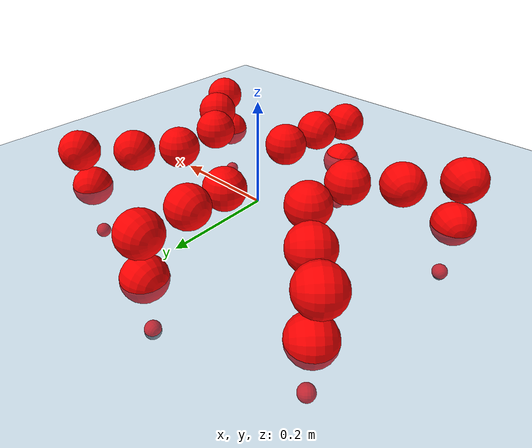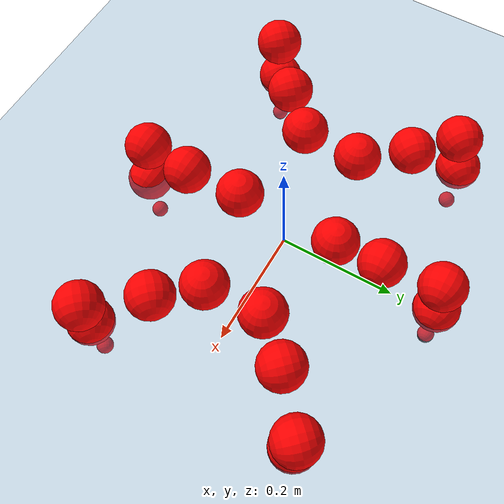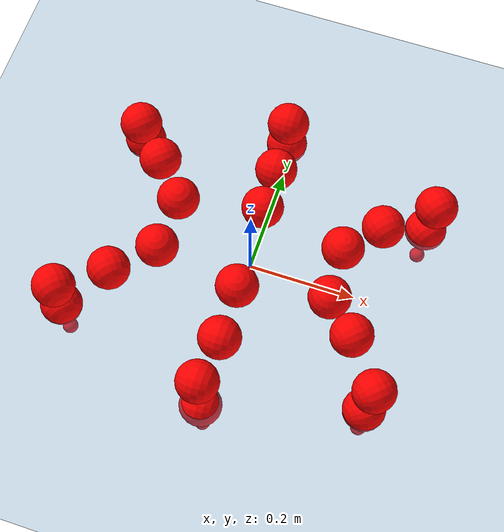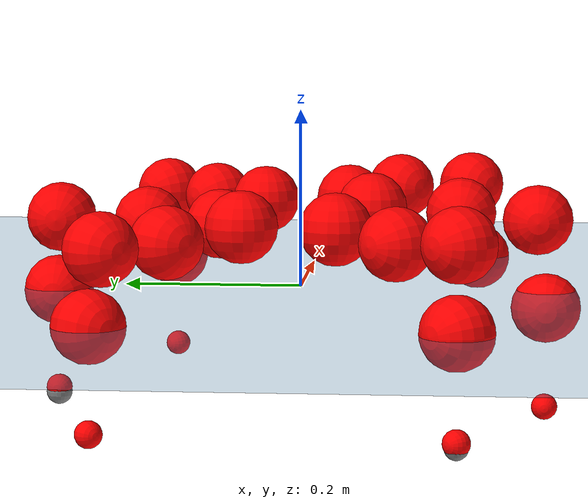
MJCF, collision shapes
<mujoco model="Golem">
  <compiler angle="radian" assetdir="assets" balanceinertia="true" inertiafromgeom="false"/>

  <option timestep="0.005" density="1.2" viscosity="2e-05"/>

  <size nkey="1"/>

  <visual>
    <quality shadowsize="8192"/>
    <map shadowclip="0.5"/>
  </visual>

  <default>
    <default class="/">
      <joint armature="0.01" damping="0.01" frictionloss="0.01"/>
      <geom contype="0" conaffinity="0" group="1" solref="-1000 -80"/>
      <site size="0.01 0.005 0.005" group="5"/>
      <general forcelimited="true" biastype="affine" gainprm="25" biasprm="0 -25 -0.5"/>
      <default class="visual">
        <geom type="mesh" group="2"/>
      </default>
      <default class="collision">
        <geom group="3"/>
      </default>
      <default class="foot">
        <geom size="0.01 0 0" condim="6" group="4" priority="1" solimp="0.015 1 0.01"/>
      </default>
      <default class="reward_collision_sphere">
        <geom group="5" rgba="1 0 0 1"/>
      </default>
    </default>
  </default>

  <asset>
    <texture type="skybox" colorspace="auto" name="//unnamed_texture_0" builtin="gradient" rgb1="0.95 0.95 0.95" rgb2="0.95 0.95 0.95" width="100" height="600"/>
    <texture type="2d" colorspace="auto" name="texplane" builtin="checker" rgb1="0.345 0.575 0.748" rgb2="0.345 0.575 0.748" markrgb="1 1 1" width="512" height="512"/>
    <material name="MatPlane" class="/" texture="texplane" texuniform="true" texrepeat="2 2" specular="0.9"/>
    <mesh name="body" class="/" file="body.stl" scale="0.001 0.001 0.001"/>
    <mesh name="coxa" class="/" file="coxa.stl" scale="0.001 0.001 0.001"/>
    <mesh name="femur" class="/" file="femur.stl" scale="0.001 0.001 0.001"/>
    <mesh name="tibia" class="/" file="tibia.stl" scale="0.001 0.001 0.001"/>
    <mesh name="tarsus" class="/" file="tarsus.stl" scale="0.001 0.001 0.001"/>
  </asset>

  <worldbody>
    <geom name="floor" class="/" size="100 100 0.125" type="plane" group="0" material="MatPlane"/>
    <light name="toplight_shadow" class="/" pos="0 0 5" dir="0.0990148 0.0990148 -0.990148" type="directional" ambient="0.04 0.04 0.04" diffuse="0.55 0.55 0.55" specular="0.12 0.12 0.12"/>
    <light name="toplight_fill" class="/" pos="0 0 5" dir="0.0990148 0.0990148 -0.990148" type="directional" castshadow="false" ambient="0.04 0.04 0.04" diffuse="0.3 0.3 0.3" specular="0.08 0.08 0.08"/>
    <body name="trunk" pos="0.00505037 0.000455825 0.0121843" quat="1 0.00068181 0.000135944 -0.000135358">
      <inertial pos="-0.00537933 -0.00173181 -0.0110138" quat="0.999174 -0.00863896 0.0387985 0.0084742" mass="3.16435" diaginertia="0.0150203 0.00452365 0.0109934"/>
      <joint name="//unnamed_joint_0" type="free"/>
      <geom name="//unnamed_geom_1" class="/" pos="0 0 0.065834" quat="1 0 0 0" type="mesh" rgba="0.9 0.9 0.9 1" mesh="body"/>
      <site name="imu" class="/" pos="0.138485 -0.000232385 0.0899509" size="0.00983564"/>
      <camera name="track" class="/" pos="0 -1.74126 0" quat="0.707107 0.707107 0 0" mode="trackcom"/>
      <camera name="ego_camera" class="/" pos="0.136683 0 0.102866" quat="-0.5 -0.5 0.5 0.5"/>
      <body name="coxa_RR" pos="-0.188454 -0.0725179 0.0741312" quat="0.382707 9.21873e-05 -0.000257037 -0.92387">
        <inertial pos="-0.00137821 0.0119603 -0.000328651" quat="0.999969 -0.000251182 0.00681741 -0.00388564" mass="0.226184" diaginertia="0.0164789 0.00508945 0.0129298"/>
        <joint name="coxa_joint_RR" class="/" pos="0 0 0" axis="0.0682949 -0.00640008 -0.997645" range="-3.11798 3.28953" armature="0.0128163" damping="0.0308665" frictionloss="0.00965447"/>
        <geom name="//unnamed_geom_2" class="/" type="mesh" rgba="0.2 0.2 0.2 1" mesh="coxa"/>
        <geom name="//unnamed_geom_3" class="reward_collision_sphere" size="0.0393425" pos="-0.0315422 0 0"/>
        <body name="femur_RR" pos="0.0640026 -0.000741085 -0.00580517" quat="0.500389 -0.499283 0.500168 0.50016">
          <inertial pos="0.00188973 -0.00601885 0.00599775" quat="0.999974 0.00389985 0.00392662 0.00469658" mass="0.186493" diaginertia="0.012965 0.00507713 0.0113818"/>
          <joint name="femur_joint_RR" class="/" pos="0 0 0" axis="-0.00620083 0.00375037 -0.999974" stiffness="0.022559" range="-3.18455 3.35917" armature="0.01352" damping="0.00838046" frictionloss="0.00591841"/>
          <geom name="//unnamed_geom_4" class="/" type="mesh" rgba="0.9 0.9 0.9 1" mesh="femur"/>
          <geom name="//unnamed_geom_5" class="reward_collision_sphere" size="0.0393425"/>
          <body name="tibia_RR" pos="-0.0106748 -0.101827 -0.00772047" quat="-0.000800643 0.999996 0.00102951 0.0023849">
            <inertial pos="0.00993915 0.00670679 0.000423595" quat="0.999091 -0.000172724 0.0425652 0.00225229" mass="0.189666" diaginertia="0.0144875 0.00506243 0.0117696"/>
            <joint name="tibia_joint_RR" class="/" pos="0 0 0" axis="0.0278963 -0.00736045 0.999584" range="-2.90545 3.22363" armature="0.0135173" damping="0.0339825" frictionloss="0.00983698"/>
            <geom name="//unnamed_geom_6" class="/" type="mesh" rgba="0.2 0.2 0.2 1" mesh="tibia"/>
            <geom name="//unnamed_geom_7" class="reward_collision_sphere" size="0.0393425"/>
            <body name="tarsus_RR" pos="0.0895661 -0.000998156 0.00129627" quat="0.999999 -0.00107395 0.000280352 -0.000281035">
              <inertial pos="0.0633601 -0.0107492 0.00799383" quat="0.495257 0.486615 0.512171 0.505576" mass="0.191067" diaginertia="0.0124685 0.00458415 0.0115082"/>
              <joint name="tarsus_joint_RR" class="/" pos="0 0 0" axis="0.000108835 0.0017208 0.999999" stiffness="0.0584457" range="-3.14882 3.1489" armature="0.00532409" damping="0.00757884" frictionloss="0.00544516"/>
              <geom name="//unnamed_geom_8" class="/" type="mesh" rgba="0.9 0.9 0.9 1" mesh="tarsus"/>
              <geom name="foot_1" class="foot" size="0.0127027" pos="0.117757 0 0" quat="0 -0.707107 0 0.707107"/>
              <geom name="//unnamed_geom_10" class="reward_collision_sphere" size="0.0393425"/>
              <geom name="//unnamed_geom_11" class="reward_collision_sphere" size="0.0147535" pos="0.113026 0 0"/>
              <site name="foot_1" class="foot" pos="0.117757 0 0" quat="0 -0.707107 0 0.707107" size="0.00983564"/>
            </body>
          </body>
        </body>
      </body>
      <body name="coxa_RM" pos="-0.0036595 -0.112213 0.0779564" quat="0.705363 0.00522825 0.0026237 -0.708822">
        <inertial pos="0.0102221 -0.000182701 0.0046678" quat="0.999995 0.00141679 -0.00259311 0.000667063" mass="0.216882" diaginertia="0.0152979 0.00575734 0.0124334"/>
        <joint name="coxa_joint_RM" class="/" pos="0 0 0" axis="-0.00369667 0.00894535 -0.999953" stiffness="0.0246465" range="-2.88283 3.1115" armature="0.011152" damping="0" frictionloss="0.0101003"/>
        <geom name="//unnamed_geom_12" class="/" type="mesh" rgba="0.2 0.2 0.2 1" mesh="coxa"/>
        <geom name="//unnamed_geom_13" class="reward_collision_sphere" size="0.0393425" pos="-0.0315422 0 0"/>
        <body name="femur_RM" pos="0.0687245 0.00249397 -0.00378061" quat="0.49952 -0.502951 0.501566 0.495935">
          <inertial pos="-0.00503156 0.00437199 -0.00413527" quat="0.998667 -0.0502853 0.00999573 -0.00600885" mass="0.170323" diaginertia="0.0113447 0.00491876 0.0101624"/>
          <joint name="femur_joint_RM" class="/" pos="0 0 0" axis="-0.000136426 -0.00564652 -0.999984" stiffness="0.0607274" range="-3.16524 3.10969" armature="0.00941022" damping="0.0249877" frictionloss="0.0119035"/>
          <geom name="//unnamed_geom_14" class="/" type="mesh" rgba="0.9 0.9 0.9 1" mesh="femur"/>
          <geom name="//unnamed_geom_15" class="reward_collision_sphere" size="0.0393425"/>
          <body name="tibia_RM" pos="0.00573646 -0.0861984 -0.0102892" quat="0.000349928 1 0.000177801 0.00016541">
            <inertial pos="0.00324305 -0.0135702 0.000640004" quat="0.999957 0.00134652 6.24044e-05 -0.00913257" mass="0.160679" diaginertia="0.0110724 0.00426259 0.00903691"/>
            <joint name="tibia_joint_RM" class="/" pos="0 0 0" axis="-0.0207215 -0.0248624 0.999476" stiffness="0.000125847" range="-3.29573 3.41425" armature="0.00670456" damping="0.0640927" frictionloss="0.0101535"/>
            <geom name="//unnamed_geom_16" class="/" type="mesh" rgba="0.2 0.2 0.2 1" mesh="tibia"/>
            <geom name="//unnamed_geom_17" class="reward_collision_sphere" size="0.0393425"/>
            <body name="tarsus_RM" pos="0.100222 0.0108385 -0.00604758" quat="0.999992 0.00281528 -0.00146441 0.00259831">
              <inertial pos="0.0588456 -0.0124359 -0.00378531" quat="0.494083 0.503291 0.502295 0.50028" mass="0.243273" diaginertia="0.0138914 0.00539167 0.0135342"/>
              <joint name="tarsus_joint_RM" class="/" pos="0 0 0" axis="-0.0292785 -0.0119568 0.9995" stiffness="0.000186454" range="-3.16669 3.16826" armature="0.00662324" damping="0" frictionloss="0.00998568"/>
              <geom name="//unnamed_geom_18" class="/" type="mesh" rgba="0.9 0.9 0.9 1" mesh="tarsus"/>
              <geom name="foot_2" class="foot" size="0.00835368" pos="0.117757 0 0" quat="0 -0.707107 0 0.707107"/>
              <geom name="//unnamed_geom_20" class="reward_collision_sphere" size="0.0393425"/>
              <geom name="//unnamed_geom_21" class="reward_collision_sphere" size="0.0147535" pos="0.113026 0 0"/>
              <site name="foot_2" class="foot" pos="0.117757 0 0" quat="0 -0.707107 0 0.707107" size="0.00983564"/>
            </body>
          </body>
        </body>
      </body>
      <body name="coxa_RF" pos="0.180244 -0.0686638 0.0704096" quat="0.922828 0.00132555 -0.0018274 -0.385205">
        <inertial pos="0.0108167 -0.00207887 -0.00941202" quat="0.999501 -0.00932159 -0.0269492 0.0135795" mass="0.151544" diaginertia="0.0116063 0.00486117 0.010439"/>
        <joint name="coxa_joint_RF" class="/" pos="0 0 0" axis="-0.0305824 -0.00838276 -0.999497" stiffness="0.0138943" range="-3.00814 3.1374" armature="0.0147372" damping="0" frictionloss="0.00641016"/>
        <geom name="//unnamed_geom_22" class="/" type="mesh" rgba="0.2 0.2 0.2 1" mesh="coxa"/>
        <geom name="//unnamed_geom_23" class="reward_collision_sphere" size="0.0393425" pos="-0.0315422 0 0"/>
        <body name="femur_RF" pos="0.0508722 -0.000581157 0.00734519" quat="0.498217 -0.499616 0.504352 0.497788">
          <inertial pos="0.000955688 0.00500601 -0.000550095" quat="0.999998 -0.0021481 0.000500423 0.000121955" mass="0.249044" diaginertia="0.0127819 0.00605695 0.0144968"/>
          <joint name="femur_joint_RF" class="/" pos="0 0 0" axis="0.000628615 0.00182175 -0.999998" stiffness="0.0632023" range="-3.22437 3.37063" armature="0.015868" damping="0.00182645" frictionloss="0.0161546"/>
          <geom name="//unnamed_geom_24" class="/" type="mesh" rgba="0.9 0.9 0.9 1" mesh="femur"/>
          <geom name="//unnamed_geom_25" class="reward_collision_sphere" size="0.0393425"/>
          <body name="tibia_RF" pos="0.00339321 -0.106056 -0.0123398" quat="-0.000275914 1 0.000192098 -0.000249503">
            <inertial pos="0.0110112 0.0021341 -0.000607274" quat="0.999995 -0.000551084 0.0029662 0.00133139" mass="0.207487" diaginertia="0.0155699 0.00544203 0.0125028"/>
            <joint name="tibia_joint_RF" class="/" pos="0 0 0" axis="0.0247207 -0.0160785 0.999565" stiffness="0.0251827" range="-3.28018 3.14438" armature="0.00976964" damping="0.0591211" frictionloss="0.00663709"/>
            <geom name="//unnamed_geom_26" class="/" type="mesh" rgba="0.2 0.2 0.2 1" mesh="tibia"/>
            <geom name="//unnamed_geom_27" class="reward_collision_sphere" size="0.0393425"/>
            <body name="tarsus_RF" pos="0.0893253 0.000846842 0.0108789" quat="0.999992 -0.0027977 -0.000709849 0.00282858">
              <inertial pos="0.0733767 0.0064653 -0.0011181" quat="0.552739 0.48915 0.459849 0.493712" mass="0.198983" diaginertia="0.0137243 0.00482028 0.0142112"/>
              <joint name="tarsus_joint_RF" class="/" pos="0 0 0" axis="0.0301487 -0.00564102 0.99953" range="-3.09329 3.16335" armature="0.0153837" damping="0.0182473" frictionloss="0.0147799"/>
              <geom name="//unnamed_geom_28" class="/" type="mesh" rgba="0.9 0.9 0.9 1" mesh="tarsus"/>
              <geom name="foot_3" class="foot" size="0.0098346" pos="0.117757 0 0" quat="0 -0.707107 0 0.707107"/>
              <geom name="//unnamed_geom_30" class="reward_collision_sphere" size="0.0393425"/>
              <geom name="//unnamed_geom_31" class="reward_collision_sphere" size="0.0147535" pos="0.113026 0 0"/>
              <site name="foot_3" class="foot" pos="0.117757 0 0" quat="0 -0.707107 0 0.707107" size="0.00983564"/>
            </body>
          </body>
        </body>
      </body>
      <body name="coxa_LR" pos="-0.184246 0.0731603 0.0750146" quat="0.381893 0.000176097 -0.000709147 0.924206">
        <inertial pos="-0.00411931 0.000196928 -0.000681457" quat="0.998227 -0.0378411 0.0379218 -0.0259326" mass="0.180251" diaginertia="0.0127433 0.00405055 0.0112787"/>
        <joint name="coxa_joint_LR" class="/" pos="0 0 0" axis="0.0221924 -0.0100488 -0.999703" range="-3.16522 3.03538" armature="0.00491501" damping="0.00729725" frictionloss="0.00795635"/>
        <geom name="//unnamed_geom_32" class="/" type="mesh" rgba="0.2 0.2 0.2 1" mesh="coxa"/>
        <geom name="//unnamed_geom_33" class="reward_collision_sphere" size="0.0393425" pos="-0.0315422 0 0"/>
        <body name="femur_LR" pos="0.0635156 -0.00720336 -0.00946699" quat="0.50143 -0.50003 0.501845 0.496678">
          <inertial pos="0.0099296 0.0116214 -0.0116028" quat="0.999998 0.000606788 -0.000625619 0.00163546" mass="0.151231" diaginertia="0.0110537 0.00401969 0.011141"/>
          <joint name="femur_joint_LR" class="/" pos="0 0 0" axis="0.0268946 0.0547257 0.998139" stiffness="0.0283888" range="-2.98093 3.31239" armature="0.00309844" damping="0.0130725" frictionloss="0.0146782"/>
          <geom name="//unnamed_geom_34" class="/" type="mesh" rgba="0.9 0.9 0.9 1" mesh="femur"/>
          <geom name="//unnamed_geom_35" class="reward_collision_sphere" size="0.0393425"/>
          <body name="tibia_LR" pos="-0.000373095 -0.0853524 0.00111918" quat="-7.36083e-05 1 -0.00033303 -3.96101e-05">
            <inertial pos="0.000145564 0.0115445 0.00111958" quat="0.999588 0.0034676 -0.0198006 0.0204768" mass="0.232421" diaginertia="0.0153404 0.00508628 0.0146156"/>
            <joint name="tibia_joint_LR" class="/" pos="0 0 0" axis="0.00804793 0.0539335 -0.998512" stiffness="0.0539095" range="-3.11128 3.35443" armature="0.00994507" damping="0.00372787" frictionloss="0.0059654"/>
            <geom name="//unnamed_geom_36" class="/" type="mesh" rgba="0.2 0.2 0.2 1" mesh="tibia"/>
            <geom name="//unnamed_geom_37" class="reward_collision_sphere" size="0.0393425"/>
            <body name="tarsus_LR" pos="0.0798662 0.0103694 0.00704013" quat="0.999993 -0.00341602 -0.000439302 0.00158957">
              <inertial pos="0.06766 -0.00491931 0.00892142" quat="0.502285 0.499926 0.500713 0.497062" mass="0.211112" diaginertia="0.0132633 0.0046668 0.011401"/>
              <joint name="tarsus_joint_LR" class="/" pos="0 0 0" axis="0.000195414 0.0064422 -0.999979" stiffness="0.0211068" range="-2.96341 3.14577" armature="0.0146197" damping="0.017055" frictionloss="0.00941263"/>
              <geom name="//unnamed_geom_38" class="/" type="mesh" rgba="0.9 0.9 0.9 1" mesh="tarsus"/>
              <geom name="foot_4" class="foot" size="0.00983273" pos="0.117757 0 0" quat="0.707107 0 -0.707107 0"/>
              <geom name="//unnamed_geom_40" class="reward_collision_sphere" size="0.0393425"/>
              <geom name="//unnamed_geom_41" class="reward_collision_sphere" size="0.0147535" pos="0.113026 0 0"/>
              <site name="foot_4" class="foot" pos="0.117757 0 0" quat="0.707107 0 -0.707107 0" size="0.00983564"/>
            </body>
          </body>
        </body>
      </body>
      <body name="coxa_LM" pos="-0.0117782 0.121811 0.0589816" quat="0.706959 -0.000117691 0.000453588 0.707255">
        <inertial pos="-0.00712547 -0.00371897 -0.00428893" quat="0.999572 0.0274216 0.00209229 -0.00997214" mass="0.212692" diaginertia="0.0112569 0.00528833 0.0110631"/>
        <joint name="coxa_joint_LM" class="/" pos="0 0 0" axis="-0.0505012 0.0214932 -0.998493" stiffness="0.0208171" range="-3.24014 2.88385" armature="0.00987429" damping="0.0165356" frictionloss="0.00914525"/>
        <geom name="//unnamed_geom_42" class="/" type="mesh" rgba="0.2 0.2 0.2 1" mesh="coxa"/>
        <geom name="//unnamed_geom_43" class="reward_collision_sphere" size="0.0393425" pos="-0.0315422 0 0"/>
        <body name="femur_LM" pos="0.0499244 0.00025351 0.0025797" quat="0.502452 -0.50263 0.497598 0.497294">
          <inertial pos="-0.00839161 0.00107158 0.00778424" quat="0.99998 -0.00205716 -0.00286483 0.00528541" mass="0.143878" diaginertia="0.0116512 0.00445751 0.00903827"/>
          <joint name="femur_joint_LM" class="/" pos="0 0 0" axis="0.011925 0.0428003 0.999012" range="-2.91336 3.36324" armature="0.0082442" damping="0" frictionloss="0.00597134"/>
          <geom name="//unnamed_geom_44" class="/" type="mesh" rgba="0.9 0.9 0.9 1" mesh="femur"/>
          <geom name="//unnamed_geom_45" class="reward_collision_sphere" size="0.0393425"/>
          <body name="tibia_LM" pos="-0.00356714 -0.0985908 0.00762316" quat="-0.0010998 0.999999 0.0001546 0.0011552">
            <inertial pos="-0.00778606 -0.00613887 0.0012138" quat="0.999795 -0.00175649 -0.000340678 -0.0201811" mass="0.1645" diaginertia="0.011579 0.00531729 0.00967555"/>
            <joint name="tibia_joint_LM" class="/" pos="0 0 0" axis="0.0201904 0.0332381 -0.999244" stiffness="0.0687182" range="-3.15571 3.12705" armature="0.0152021" damping="0.0358328" frictionloss="0.00929313"/>
            <geom name="//unnamed_geom_46" class="/" type="mesh" rgba="0.2 0.2 0.2 1" mesh="tibia"/>
            <geom name="//unnamed_geom_47" class="reward_collision_sphere" size="0.0393425"/>
            <body name="tarsus_LM" pos="0.0829554 0.00316035 -0.00158705" quat="1 0.000341876 -0.000134455 -5.97504e-05">
              <inertial pos="0.061127 8.89026e-05 -0.00938178" quat="0.504125 0.514676 0.476894 0.503526" mass="0.201906" diaginertia="0.0148223 0.00440459 0.0112752"/>
              <joint name="tarsus_joint_LM" class="/" pos="0 0 0" axis="0.00376978 -0.00194825 -0.999991" stiffness="0.0399308" range="-3.06986 3.162" armature="0.0102914" damping="0" frictionloss="0.00978137"/>
              <geom name="//unnamed_geom_48" class="/" type="mesh" rgba="0.9 0.9 0.9 1" mesh="tarsus"/>
              <geom name="foot_5" class="foot" size="0.0147572" pos="0.117757 0 0" quat="0.707107 0 -0.707107 0"/>
              <geom name="//unnamed_geom_50" class="reward_collision_sphere" size="0.0393425"/>
              <geom name="//unnamed_geom_51" class="reward_collision_sphere" size="0.0147535" pos="0.113026 0 0"/>
              <site name="foot_5" class="foot" pos="0.117757 0 0" quat="0.707107 0 -0.707107 0" size="0.00983564"/>
            </body>
          </body>
        </body>
      </body>
      <body name="coxa_LF" pos="0.175043 0.0764854 0.0680217" quat="0.922038 -0.00075042 0.0030874 0.387085">
        <inertial pos="-0.0010644 -0.000558275 -0.00935851" quat="0.999905 -0.012828 0.00263317 0.00423599" mass="0.204459" diaginertia="0.0123601 0.00620196 0.0120127"/>
        <joint name="coxa_joint_LF" class="/" pos="0 0 0" axis="-0.00893125 -0.0486819 -0.998774" stiffness="0.0180789" range="-3.16932 3.1312" armature="0.00966342" damping="2.39148e-05" frictionloss="0.0145501"/>
        <geom name="//unnamed_geom_52" class="/" type="mesh" rgba="0.2 0.2 0.2 1" mesh="coxa"/>
        <geom name="//unnamed_geom_53" class="reward_collision_sphere" size="0.0393425" pos="-0.0315422 0 0"/>
        <body name="femur_LF" pos="0.0549743 0.00452087 -0.00209416" quat="0.498041 -0.501122 0.500512 0.50032">
          <inertial pos="0.00171472 0.000356385 -0.0113733" quat="0.999232 0.0278012 0.027591 0.00105752" mass="0.156247" diaginertia="0.0141826 0.00512121 0.0115879"/>
          <joint name="femur_joint_LF" class="/" pos="0 0 0" axis="0.0140468 0.041835 0.999026" stiffness="0.00884733" range="-3.14923 3.12421" armature="0.00920691" damping="0.0114713" frictionloss="0.00469468"/>
          <geom name="//unnamed_geom_54" class="/" type="mesh" rgba="0.9 0.9 0.9 1" mesh="femur"/>
          <geom name="//unnamed_geom_55" class="reward_collision_sphere" size="0.0393425"/>
          <body name="tibia_LF" pos="0.00229044 -0.107638 -0.00965047" quat="0.000323475 0.999982 0.00395146 -0.00452617">
            <inertial pos="-0.00116583 -0.000276295 0.00900777" quat="0.998272 0.0170653 0.00171692 -0.0561959" mass="0.171022" diaginertia="0.0107442 0.00488142 0.0113052"/>
            <joint name="tibia_joint_LF" class="/" pos="0 0 0" axis="-0.000720695 -0.00285196 -0.999996" stiffness="0.0438268" range="-3.41015 3.0373" armature="0.0102489" damping="0" frictionloss="0.00976035"/>
            <geom name="//unnamed_geom_56" class="/" type="mesh" rgba="0.2 0.2 0.2 1" mesh="tibia"/>
            <geom name="//unnamed_geom_57" class="reward_collision_sphere" size="0.0393425"/>
            <body name="tarsus_LF" pos="0.0813011 -0.00972001 0.000196318" quat="0.999996 -0.0013896 0.0024596 -0.000356036">
              <inertial pos="0.0755623 0.00365174 0.00130782" quat="0.501386 0.497952 0.499491 0.501164" mass="0.227144" diaginertia="0.0152257 0.00599016 0.0107956"/>
              <joint name="tarsus_joint_LF" class="/" pos="0 0 0" axis="0.0327224 -0.0411574 -0.998617" stiffness="0.0454823" range="-3.16972 3.32981" armature="0.00410139" damping="0" frictionloss="0.00338919"/>
              <geom name="//unnamed_geom_58" class="/" type="mesh" rgba="0.9 0.9 0.9 1" mesh="tarsus"/>
              <geom name="foot_6" class="foot" size="0.0088837" pos="0.117757 0 0" quat="0.707107 0 -0.707107 0"/>
              <geom name="//unnamed_geom_60" class="reward_collision_sphere" size="0.0393425"/>
              <geom name="//unnamed_geom_61" class="reward_collision_sphere" size="0.0147535" pos="0.113026 0 0"/>
              <site name="foot_6" class="foot" pos="0.117757 0 0" quat="0.707107 0 -0.707107 0" size="0.00983564"/>
            </body>
          </body>
        </body>
      </body>
    </body>
  </worldbody>

  <contact>
    <pair class="/" geom1="floor" geom2="foot_1" name="//unnamed_contact_0"/>
    <pair class="/" geom1="floor" geom2="foot_2" name="//unnamed_contact_1"/>
    <pair class="/" geom1="floor" geom2="foot_3" name="//unnamed_contact_2"/>
    <pair class="/" geom1="floor" geom2="foot_4" name="//unnamed_contact_3"/>
    <pair class="/" geom1="floor" geom2="foot_5" name="//unnamed_contact_4"/>
    <pair class="/" geom1="floor" geom2="foot_6" name="//unnamed_contact_5"/>
  </contact>

  <actuator>
    <general name="coxa_joint_RR" class="/" joint="coxa_joint_RR" forcerange="-5.28533 5.28533" gainprm="23.1648" biasprm="0 -23.1648 -0.483191"/>
    <general name="femur_joint_RR" class="/" joint="femur_joint_RR" forcerange="-4.90934 4.90934" gainprm="23.1648" biasprm="0 -23.1648 -0.483191"/>
    <general name="tibia_joint_RR" class="/" joint="tibia_joint_RR" forcerange="-9.55533 9.55533" gainprm="23.1648" biasprm="0 -23.1648 -0.483191"/>
    <general name="tarsus_joint_RR" class="/" joint="tarsus_joint_RR" forcerange="-9.75601 9.75601" gainprm="23.1648" biasprm="0 -23.1648 -0.483191"/>
    <general name="coxa_joint_RM" class="/" joint="coxa_joint_RM" forcerange="-10.2266 10.2266" gainprm="23.1648" biasprm="0 -23.1648 -0.483191"/>
    <general name="femur_joint_RM" class="/" joint="femur_joint_RM" forcerange="-6.82262 6.82262" gainprm="23.1648" biasprm="0 -23.1648 -0.483191"/>
    <general name="tibia_joint_RM" class="/" joint="tibia_joint_RM" forcerange="-6.80117 6.80117" gainprm="23.1648" biasprm="0 -23.1648 -0.483191"/>
    <general name="tarsus_joint_RM" class="/" joint="tarsus_joint_RM" forcerange="-6.97613 6.97613" gainprm="23.1648" biasprm="0 -23.1648 -0.483191"/>
    <general name="coxa_joint_RF" class="/" joint="coxa_joint_RF" forcerange="-7.18201 7.18201" gainprm="23.1648" biasprm="0 -23.1648 -0.483191"/>
    <general name="femur_joint_RF" class="/" joint="femur_joint_RF" forcerange="-3.57911 3.57911" gainprm="23.1648" biasprm="0 -23.1648 -0.483191"/>
    <general name="tibia_joint_RF" class="/" joint="tibia_joint_RF" forcerange="-4.04705 4.04705" gainprm="23.1648" biasprm="0 -23.1648 -0.483191"/>
    <general name="tarsus_joint_RF" class="/" joint="tarsus_joint_RF" forcerange="-4.2595 4.2595" gainprm="23.1648" biasprm="0 -23.1648 -0.483191"/>
    <general name="coxa_joint_LR" class="/" joint="coxa_joint_LR" forcerange="-7.44129 7.44129" gainprm="23.1648" biasprm="0 -23.1648 -0.483191"/>
    <general name="femur_joint_LR" class="/" joint="femur_joint_LR" forcerange="-7.54892 7.54892" gainprm="23.1648" biasprm="0 -23.1648 -0.483191"/>
    <general name="tibia_joint_LR" class="/" joint="tibia_joint_LR" forcerange="-3.69144 3.69144" gainprm="23.1648" biasprm="0 -23.1648 -0.483191"/>
    <general name="tarsus_joint_LR" class="/" joint="tarsus_joint_LR" forcerange="-4.04929 4.04929" gainprm="23.1648" biasprm="0 -23.1648 -0.483191"/>
    <general name="coxa_joint_LM" class="/" joint="coxa_joint_LM" forcerange="-7.36294 7.36294" gainprm="23.1648" biasprm="0 -23.1648 -0.483191"/>
    <general name="femur_joint_LM" class="/" joint="femur_joint_LM" forcerange="-7.24194 7.24194" gainprm="23.1648" biasprm="0 -23.1648 -0.483191"/>
    <general name="tibia_joint_LM" class="/" joint="tibia_joint_LM" forcerange="-7.24407 7.24407" gainprm="23.1648" biasprm="0 -23.1648 -0.483191"/>
    <general name="tarsus_joint_LM" class="/" joint="tarsus_joint_LM" forcerange="-8.34088 8.34088" gainprm="23.1648" biasprm="0 -23.1648 -0.483191"/>
    <general name="coxa_joint_LF" class="/" joint="coxa_joint_LF" forcerange="-6.83564 6.83564" gainprm="23.1648" biasprm="0 -23.1648 -0.483191"/>
    <general name="femur_joint_LF" class="/" joint="femur_joint_LF" forcerange="-4.34093 4.34093" gainprm="23.1648" biasprm="0 -23.1648 -0.483191"/>
    <general name="tibia_joint_LF" class="/" joint="tibia_joint_LF" forcerange="-4.54074 4.54074" gainprm="23.1648" biasprm="0 -23.1648 -0.483191"/>
    <general name="tarsus_joint_LF" class="/" joint="tarsus_joint_LF" forcerange="-7.14923 7.14923" gainprm="23.1648" biasprm="0 -23.1648 -0.483191"/>
  </actuator>

  <sensor>
    <gyro site="imu" name="imu_angular_velocity"/>
    <velocimeter site="imu" name="imu_linear_velocity"/>
    <framelinvel objtype="site" objname="foot_1" name="foot_1_global_linear_velocity"/>
    <framelinvel objtype="site" objname="foot_2" name="foot_2_global_linear_velocity"/>
    <framelinvel objtype="site" objname="foot_3" name="foot_3_global_linear_velocity"/>
    <framelinvel objtype="site" objname="foot_4" name="foot_4_global_linear_velocity"/>
    <framelinvel objtype="site" objname="foot_5" name="foot_5_global_linear_velocity"/>
    <framelinvel objtype="site" objname="foot_6" name="foot_6_global_linear_velocity"/>
  </sensor>

  <keyframe>
    <key name="home" qpos="0 0 0.1457 1 0 0 0 0 0 0 0 0 0 0 0 0 0 0 0 0 0 0 0 0 0 0 0 0 0 0 0"/>
  </keyframe>
</mujoco>
